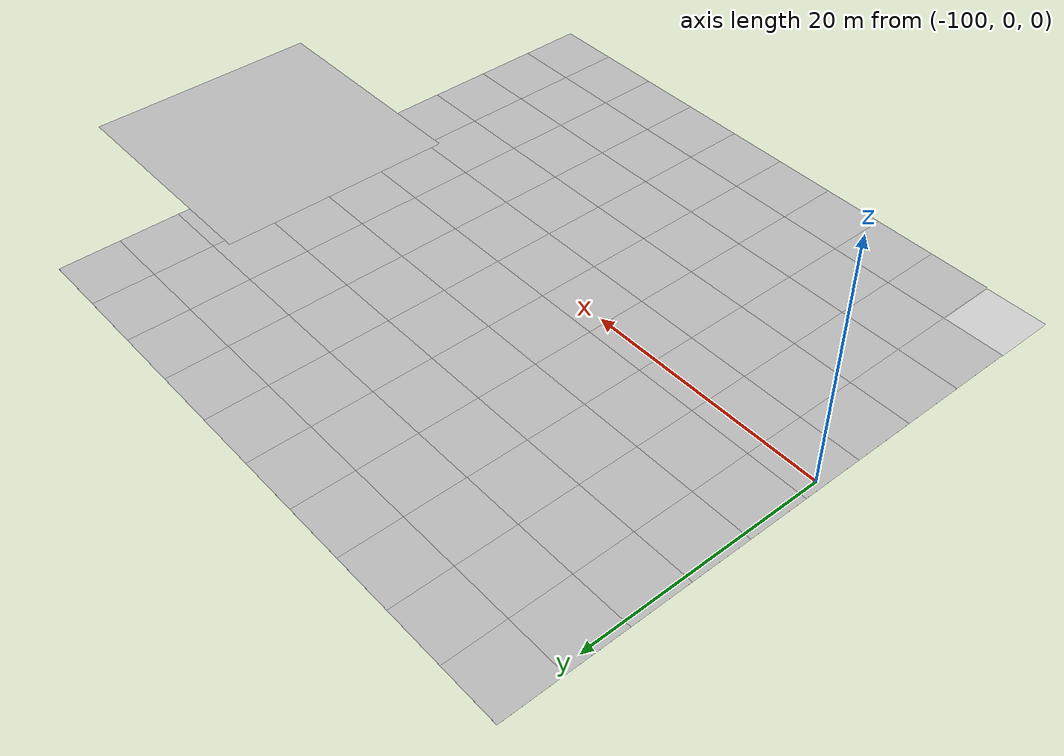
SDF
<sdf version="1.4">
 <world name="default">
  <model name="Road_curve_1">
   <static>1</static>
   <pose>-46.9437 6.31014 0 0 -0 0</pose>
   <link name="link">
    <visual name="visual">
     <pose>0 0 -7.83 0 -0 0</pose>
     <geometry><mesh><uri>model://Road_curve/models/Road 06.dae</uri><scale>0.39 0.39 1</scale></mesh></geometry>
    </visual>
    <velocity_decay><linear>0</linear><angular>0</angular></velocity_decay>
   </link>
  </model>
  <model name="pavement_plane_6">
   <static>1</static>
   <link name="link">
    <collision name="collision">
     <geometry><plane><normal>0 0 1</normal><size>50 50</size></plane></geometry>
     <surface><friction><ode><mu>100</mu><mu2>50</mu2></ode></friction></surface>
    </collision>
    <visual name="visual_0">
     <pose>-25 -25 0 0 -0 0</pose>
     <cast_shadows>0</cast_shadows>
     <geometry><plane><normal>0 0 1</normal><size>5 5</size></plane></geometry>
     <material>
      <script>
       <uri>model://pavement_plane/materials/scripts</uri>
       <uri>model://pavement_plane/materials/textures</uri>
       <name>vrc/pavement</name>
      </script>
     </material>
    </visual>
    <visual name="visual_1">
     <pose>-20 -25 0 0 -0 0</pose>
     <cast_shadows>0</cast_shadows>
     <geometry><plane><normal>0 0 1</normal><size>5 5</size></plane></geometry>
     <material>
      <script>
       <uri>model://pavement_plane/materials/scripts</uri>
       <uri>model://pavement_plane/materials/textures</uri>
       <name>vrc/pavement</name>
      </script>
     </material>
    </visual>
    <visual name="visual_2">
     <pose>-15 -25 0 0 -0 0</pose>
     <cast_shadows>0</cast_shadows>
     <geometry><plane><normal>0 0 1</normal><size>5 5</size></plane></geometry>
     <material>
      <script>
       <uri>model://pavement_plane/materials/scripts</uri>
       <uri>model://pavement_plane/materials/textures</uri>
       <name>vrc/pavement</name>
      </script>
     </material>
    </visual>
    <visual name="visual_3">
     <pose>-10 -25 0 0 -0 0</pose>
     <cast_shadows>0</cast_shadows>
     <geometry><plane><normal>0 0 1</normal><size>5 5</size></plane></geometry>
     <material>
      <script>
       <uri>model://pavement_plane/materials/scripts</uri>
       <uri>model://pavement_plane/materials/textures</uri>
       <name>vrc/pavement</name>
      </script>
     </material>
    </visual>
    <visual name="visual_4">
     <pose>-5 -25 0 0 -0 0</pose>
     <cast_shadows>0</cast_shadows>
     <geometry><plane><normal>0 0 1</normal><size>5 5</size></plane></geometry>
     <material>
      <script>
       <uri>model://pavement_plane/materials/scripts</uri>
       <uri>model://pavement_plane/materials/textures</uri>
       <name>vrc/pavement</name>
      </script>
     </material>
    </visual>
    <visual name="visual_5">
     <pose>0 -25 0 0 -0 0</pose>
     <cast_shadows>0</cast_shadows>
     <geometry><plane><normal>0 0 1</normal><size>5 5</size></plane></geometry>
     <material>
      <script>
       <uri>model://pavement_plane/materials/scripts</uri>
       <uri>model://pavement_plane/materials/textures</uri>
       <name>vrc/pavement</name>
      </script>
     </material>
    </visual>
    <visual name="visual_6">
     <pose>5 -25 0 0 -0 0</pose>
     <cast_shadows>0</cast_shadows>
     <geometry><plane><normal>0 0 1</normal><size>5 5</size></plane></geometry>
     <material>
      <script>
       <uri>model://pavement_plane/materials/scripts</uri>
       <uri>model://pavement_plane/materials/textures</uri>
       <name>vrc/pavement</name>
      </script>
     </material>
    </visual>
    <visual name="visual_7">
     <pose>10 -25 0 0 -0 0</pose>
     <cast_shadows>0</cast_shadows>
     <geometry><plane><normal>0 0 1</normal><size>5 5</size></plane></geometry>
     <material>
      <script>
       <uri>model://pavement_plane/materials/scripts</uri>
       <uri>model://pavement_plane/materials/textures</uri>
       <name>vrc/pavement</name>
      </script>
     </material>
    </visual>
    <visual name="visual_8">
     <pose>15 -25 0 0 -0 0</pose>
     <cast_shadows>0</cast_shadows>
     <geometry><plane><normal>0 0 1</normal><size>5 5</size></plane></geometry>
     <material>
      <script>
       <uri>model://pavement_plane/materials/scripts</uri>
       <uri>model://pavement_plane/materials/textures</uri>
       <name>vrc/pavement</name>
      </script>
     </material>
    </visual>
    <visual name="visual_9">
     <pose>20 -25 0 0 -0 0</pose>
     <cast_shadows>0</cast_shadows>
     <geometry><plane><normal>0 0 1</normal><size>5 5</size></plane></geometry>
     <material>
      <script>
       <uri>model://pavement_plane/materials/scripts</uri>
       <uri>model://pavement_plane/materials/textures</uri>
       <name>vrc/pavement</name>
      </script>
     </material>
    </visual>
    <visual name="visual_10">
     <pose>-25 -20 0 0 -0 0</pose>
     <cast_shadows>0</cast_shadows>
     <geometry><plane><normal>0 0 1</normal><size>5 5</size></plane></geometry>
     <material>
      <script>
       <uri>model://pavement_plane/materials/scripts</uri>
       <uri>model://pavement_plane/materials/textures</uri>
       <name>vrc/pavement</name>
      </script>
     </material>
    </visual>
    <visual name="visual_11">
     <pose>-20 -20 0 0 -0 0</pose>
     <cast_shadows>0</cast_shadows>
     <geometry><plane><normal>0 0 1</normal><size>5 5</size></plane></geometry>
     <material>
      <script>
       <uri>model://pavement_plane/materials/scripts</uri>
       <uri>model://pavement_plane/materials/textures</uri>
       <name>vrc/pavement</name>
      </script>
     </material>
    </visual>
    <visual name="visual_12">
     <pose>-15 -20 0 0 -0 0</pose>
     <cast_shadows>0</cast_shadows>
     <geometry><plane><normal>0 0 1</normal><size>5 5</size></plane></geometry>
     <material>
      <script>
       <uri>model://pavement_plane/materials/scripts</uri>
       <uri>model://pavement_plane/materials/textures</uri>
       <name>vrc/pavement</name>
      </script>
     </material>
    </visual>
    <visual name="visual_13">
     <pose>-10 -20 0 0 -0 0</pose>
     <cast_shadows>0</cast_shadows>
     <geometry><plane><normal>0 0 1</normal><size>5 5</size></plane></geometry>
     <material>
      <script>
       <uri>model://pavement_plane/materials/scripts</uri>
       <uri>model://pavement_plane/materials/textures</uri>
       <name>vrc/pavement</name>
      </script>
     </material>
    </visual>
    <visual name="visual_14">
     <pose>-5 -20 0 0 -0 0</pose>
     <cast_shadows>0</cast_shadows>
     <geometry><plane><normal>0 0 1</normal><size>5 5</size></plane></geometry>
     <material>
      <script>
       <uri>model://pavement_plane/materials/scripts</uri>
       <uri>model://pavement_plane/materials/textures</uri>
       <name>vrc/pavement</name>
      </script>
     </material>
    </visual>
    <visual name="visual_15">
     <pose>0 -20 0 0 -0 0</pose>
     <cast_shadows>0</cast_shadows>
     <geometry><plane><normal>0 0 1</normal><size>5 5</size></plane></geometry>
     <material>
      <script>
       <uri>model://pavement_plane/materials/scripts</uri>
       <uri>model://pavement_plane/materials/textures</uri>
       <name>vrc/pavement</name>
      </script>
     </material>
    </visual>
    <visual name="visual_16">
     <pose>5 -20 0 0 -0 0</pose>
     <cast_shadows>0</cast_shadows>
     <geometry><plane><normal>0 0 1</normal><size>5 5</size></plane></geometry>
     <material>
      <script>
       <uri>model://pavement_plane/materials/scripts</uri>
       <uri>model://pavement_plane/materials/textures</uri>
       <name>vrc/pavement</name>
      </script>
     </material>
    </visual>
    <visual name="visual_17">
     <pose>10 -20 0 0 -0 0</pose>
     <cast_shadows>0</cast_shadows>
     <geometry><plane><normal>0 0 1</normal><size>5 5</size></plane></geometry>
     <material>
      <script>
       <uri>model://pavement_plane/materials/scripts</uri>
       <uri>model://pavement_plane/materials/textures</uri>
       <name>vrc/pavement</name>
      </script>
     </material>
    </visual>
    <visual name="visual_18">
     <pose>15 -20 0 0 -0 0</pose>
     <cast_shadows>0</cast_shadows>
     <geometry><plane><normal>0 0 1</normal><size>5 5</size></plane></geometry>
     <material>
      <script>
       <uri>model://pavement_plane/materials/scripts</uri>
       <uri>model://pavement_plane/materials/textures</uri>
       <name>vrc/pavement</name>
      </script>
     </material>
    </visual>
    <visual name="visual_19">
     <pose>20 -20 0 0 -0 0</pose>
     <cast_shadows>0</cast_shadows>
     <geometry><plane><normal>0 0 1</normal><size>5 5</size></plane></geometry>
     <material>
      <script>
       <uri>model://pavement_plane/materials/scripts</uri>
       <uri>model://pavement_plane/materials/textures</uri>
       <name>vrc/pavement</name>
      </script>
     </material>
    </visual>
    <visual name="visual_20">
     <pose>-25 -15 0 0 -0 0</pose>
     <cast_shadows>0</cast_shadows>
     <geometry><plane><normal>0 0 1</normal><size>5 5</size></plane></geometry>
     <material>
      <script>
       <uri>model://pavement_plane/materials/scripts</uri>
       <uri>model://pavement_plane/materials/textures</uri>
       <name>vrc/pavement</name>
      </script>
     </material>
    </visual>
    <visual name="visual_21">
     <pose>-20 -15 0 0 -0 0</pose>
     <cast_shadows>0</cast_shadows>
     <geometry><plane><normal>0 0 1</normal><size>5 5</size></plane></geometry>
     <material>
      <script>
       <uri>model://pavement_plane/materials/scripts</uri>
       <uri>model://pavement_plane/materials/textures</uri>
       <name>vrc/pavement</name>
      </script>
     </material>
    </visual>
    <visual name="visual_22">
     <pose>-15 -15 0 0 -0 0</pose>
     <cast_shadows>0</cast_shadows>
     <geometry><plane><normal>0 0 1</normal><size>5 5</size></plane></geometry>
     <material>
      <script>
       <uri>model://pavement_plane/materials/scripts</uri>
       <uri>model://pavement_plane/materials/textures</uri>
       <name>vrc/pavement</name>
      </script>
     </material>
    </visual>
    <visual name="visual_23">
     <pose>-10 -15 0 0 -0 0</pose>
     <cast_shadows>0</cast_shadows>
     <geometry><plane><normal>0 0 1</normal><size>5 5</size></plane></geometry>
     <material>
      <script>
       <uri>model://pavement_plane/materials/scripts</uri>
       <uri>model://pavement_plane/materials/textures</uri>
       <name>vrc/pavement</name>
      </script>
     </material>
    </visual>
    <visual name="visual_24">
     <pose>-5 -15 0 0 -0 0</pose>
     <cast_shadows>0</cast_shadows>
     <geometry><plane><normal>0 0 1</normal><size>5 5</size></plane></geometry>
     <material>
      <script>
       <uri>model://pavement_plane/materials/scripts</uri>
       <uri>model://pavement_plane/materials/textures</uri>
       <name>vrc/pavement</name>
      </script>
     </material>
    </visual>
    <visual name="visual_25">
     <pose>0 -15 0 0 -0 0</pose>
     <cast_shadows>0</cast_shadows>
     <geometry><plane><normal>0 0 1</normal><size>5 5</size></plane></geometry>
     <material>
      <script>
       <uri>model://pavement_plane/materials/scripts</uri>
       <uri>model://pavement_plane/materials/textures</uri>
       <name>vrc/pavement</name>
      </script>
     </material>
    </visual>
    <visual name="visual_26">
     <pose>5 -15 0 0 -0 0</pose>
     <cast_shadows>0</cast_shadows>
     <geometry><plane><normal>0 0 1</normal><size>5 5</size></plane></geometry>
     <material>
      <script>
       <uri>model://pavement_plane/materials/scripts</uri>
       <uri>model://pavement_plane/materials/textures</uri>
       <name>vrc/pavement</name>
      </script>
     </material>
    </visual>
    <visual name="visual_27">
     <pose>10 -15 0 0 -0 0</pose>
     <cast_shadows>0</cast_shadows>
     <geometry><plane><normal>0 0 1</normal><size>5 5</size></plane></geometry>
     <material>
      <script>
       <uri>model://pavement_plane/materials/scripts</uri>
       <uri>model://pavement_plane/materials/textures</uri>
       <name>vrc/pavement</name>
      </script>
     </material>
    </visual>
    <visual name="visual_28">
     <pose>15 -15 0 0 -0 0</pose>
     <cast_shadows>0</cast_shadows>
     <geometry><plane><normal>0 0 1</normal><size>5 5</size></plane></geometry>
     <material>
      <script>
       <uri>model://pavement_plane/materials/scripts</uri>
       <uri>model://pavement_plane/materials/textures</uri>
       <name>vrc/pavement</name>
      </script>
     </material>
    </visual>
    <visual name="visual_29">
     <pose>20 -15 0 0 -0 0</pose>
     <cast_shadows>0</cast_shadows>
     <geometry><plane><normal>0 0 1</normal><size>5 5</size></plane></geometry>
     <material>
      <script>
       <uri>model://pavement_plane/materials/scripts</uri>
       <uri>model://pavement_plane/materials/textures</uri>
       <name>vrc/pavement</name>
      </script>
     </material>
    </visual>
    <visual name="visual_30">
     <pose>-25 -10 0 0 -0 0</pose>
     <cast_shadows>0</cast_shadows>
     <geometry><plane><normal>0 0 1</normal><size>5 5</size></plane></geometry>
     <material>
      <script>
       <uri>model://pavement_plane/materials/scripts</uri>
       <uri>model://pavement_plane/materials/textures</uri>
       <name>vrc/pavement</name>
      </script>
     </material>
    </visual>
    <visual name="visual_31">
     <pose>-20 -10 0 0 -0 0</pose>
     <cast_shadows>0</cast_shadows>
     <geometry><plane><normal>0 0 1</normal><size>5 5</size></plane></geometry>
     <material>
      <script>
       <uri>model://pavement_plane/materials/scripts</uri>
       <uri>model://pavement_plane/materials/textures</uri>
       <name>vrc/pavement</name>
      </script>
     </material>
    </visual>
    <visual name="visual_32">
     <pose>-15 -10 0 0 -0 0</pose>
     <cast_shadows>0</cast_shadows>
     <geometry><plane><normal>0 0 1</normal><size>5 5</size></plane></geometry>
     <material>
      <script>
       <uri>model://pavement_plane/materials/scripts</uri>
       <uri>model://pavement_plane/materials/textures</uri>
       <name>vrc/pavement</name>
      </script>
     </material>
    </visual>
    <visual name="visual_33">
     <pose>-10 -10 0 0 -0 0</pose>
     <cast_shadows>0</cast_shadows>
     <geometry><plane><normal>0 0 1</normal><size>5 5</size></plane></geometry>
     <material>
      <script>
       <uri>model://pavement_plane/materials/scripts</uri>
       <uri>model://pavement_plane/materials/textures</uri>
       <name>vrc/pavement</name>
      </script>
     </material>
    </visual>
    <visual name="visual_34">
     <pose>-5 -10 0 0 -0 0</pose>
     <cast_shadows>0</cast_shadows>
     <geometry><plane><normal>0 0 1</normal><size>5 5</size></plane></geometry>
     <material>
      <script>
       <uri>model://pavement_plane/materials/scripts</uri>
       <uri>model://pavement_plane/materials/textures</uri>
       <name>vrc/pavement</name>
      </script>
     </material>
    </visual>
    <visual name="visual_35">
     <pose>0 -10 0 0 -0 0</pose>
     <cast_shadows>0</cast_shadows>
     <geometry><plane><normal>0 0 1</normal><size>5 5</size></plane></geometry>
     <material>
      <script>
       <uri>model://pavement_plane/materials/scripts</uri>
       <uri>model://pavement_plane/materials/textures</uri>
       <name>vrc/pavement</name>
      </script>
     </material>
    </visual>
    <visual name="visual_36">
     <pose>5 -10 0 0 -0 0</pose>
     <cast_shadows>0</cast_shadows>
     <geometry><plane><normal>0 0 1</normal><size>5 5</size></plane></geometry>
     <material>
      <script>
       <uri>model://pavement_plane/materials/scripts</uri>
       <uri>model://pavement_plane/materials/textures</uri>
       <name>vrc/pavement</name>
      </script>
     </material>
    </visual>
    <visual name="visual_37">
     <pose>10 -10 0 0 -0 0</pose>
     <cast_shadows>0</cast_shadows>
     <geometry><plane><normal>0 0 1</normal><size>5 5</size></plane></geometry>
     <material>
      <script>
       <uri>model://pavement_plane/materials/scripts</uri>
       <uri>model://pavement_plane/materials/textures</uri>
       <name>vrc/pavement</name>
      </script>
     </material>
    </visual>
    <visual name="visual_38">
     <pose>15 -10 0 0 -0 0</pose>
     <cast_shadows>0</cast_shadows>
     <geometry><plane><normal>0 0 1</normal><size>5 5</size></plane></geometry>
     <material>
      <script>
       <uri>model://pavement_plane/materials/scripts</uri>
       <uri>model://pavement_plane/materials/textures</uri>
       <name>vrc/pavement</name>
      </script>
     </material>
    </visual>
    <visual name="visual_39">
     <pose>20 -10 0 0 -0 0</pose>
     <cast_shadows>0</cast_shadows>
     <geometry><plane><normal>0 0 1</normal><size>5 5</size></plane></geometry>
     <material>
      <script>
       <uri>model://pavement_plane/materials/scripts</uri>
       <uri>model://pavement_plane/materials/textures</uri>
       <name>vrc/pavement</name>
      </script>
     </material>
    </visual>
    <visual name="visual_40">
     <pose>-25 -5 0 0 -0 0</pose>
     <cast_shadows>0</cast_shadows>
     <geometry><plane><normal>0 0 1</normal><size>5 5</size></plane></geometry>
     <material>
      <script>
       <uri>model://pavement_plane/materials/scripts</uri>
       <uri>model://pavement_plane/materials/textures</uri>
       <name>vrc/pavement</name>
      </script>
     </material>
    </visual>
    <visual name="visual_41">
     <pose>-20 -5 0 0 -0 0</pose>
     <cast_shadows>0</cast_shadows>
     <geometry><plane><normal>0 0 1</normal><size>5 5</size></plane></geometry>
     <material>
      <script>
       <uri>model://pavement_plane/materials/scripts</uri>
       <uri>model://pavement_plane/materials/textures</uri>
       <name>vrc/pavement</name>
      </script>
     </material>
    </visual>
    <visual name="visual_42">
     <pose>-15 -5 0 0 -0 0</pose>
     <cast_shadows>0</cast_shadows>
     <geometry><plane><normal>0 0 1</normal><size>5 5</size></plane></geometry>
     <material>
      <script>
       <uri>model://pavement_plane/materials/scripts</uri>
       <uri>model://pavement_plane/materials/textures</uri>
       <name>vrc/pavement</name>
      </script>
     </material>
    </visual>
    <visual name="visual_43">
     <pose>-10 -5 0 0 -0 0</pose>
     <cast_shadows>0</cast_shadows>
     <geometry><plane><normal>0 0 1</normal><size>5 5</size></plane></geometry>
     <material>
      <script>
       <uri>model://pavement_plane/materials/scripts</uri>
       <uri>model://pavement_plane/materials/textures</uri>
       <name>vrc/pavement</name>
      </script>
     </material>
    </visual>
    <visual name="visual_44">
     <pose>-5 -5 0 0 -0 0</pose>
     <cast_shadows>0</cast_shadows>
     <geometry><plane><normal>0 0 1</normal><size>5 5</size></plane></geometry>
     <material>
      <script>
       <uri>model://pavement_plane/materials/scripts</uri>
       <uri>model://pavement_plane/materials/textures</uri>
       <name>vrc/pavement</name>
      </script>
     </material>
    </visual>
    <visual name="visual_45">
     <pose>0 -5 0 0 -0 0</pose>
     <cast_shadows>0</cast_shadows>
     <geometry><plane><normal>0 0 1</normal><size>5 5</size></plane></geometry>
     <material>
      <script>
       <uri>model://pavement_plane/materials/scripts</uri>
       <uri>model://pavement_plane/materials/textures</uri>
       <name>vrc/pavement</name>
      </script>
     </material>
    </visual>
    <visual name="visual_46">
     <pose>5 -5 0 0 -0 0</pose>
     <cast_shadows>0</cast_shadows>
     <geometry><plane><normal>0 0 1</normal><size>5 5</size></plane></geometry>
     <material>
      <script>
       <uri>model://pavement_plane/materials/scripts</uri>
       <uri>model://pavement_plane/materials/textures</uri>
       <name>vrc/pavement</name>
      </script>
     </material>
    </visual>
    <visual name="visual_47">
     <pose>10 -5 0 0 -0 0</pose>
     <cast_shadows>0</cast_shadows>
     <geometry><plane><normal>0 0 1</normal><size>5 5</size></plane></geometry>
     <material>
      <script>
       <uri>model://pavement_plane/materials/scripts</uri>
       <uri>model://pavement_plane/materials/textures</uri>
       <name>vrc/pavement</name>
      </script>
     </material>
    </visual>
    <visual name="visual_48">
     <pose>15 -5 0 0 -0 0</pose>
     <cast_shadows>0</cast_shadows>
     <geometry><plane><normal>0 0 1</normal><size>5 5</size></plane></geometry>
     <material>
      <script>
       <uri>model://pavement_plane/materials/scripts</uri>
       <uri>model://pavement_plane/materials/textures</uri>
       <name>vrc/pavement</name>
      </script>
     </material>
    </visual>
    <visual name="visual_49">
     <pose>20 -5 0 0 -0 0</pose>
     <cast_shadows>0</cast_shadows>
     <geometry><plane><normal>0 0 1</normal><size>5 5</size></plane></geometry>
     <material>
      <script>
       <uri>model://pavement_plane/materials/scripts</uri>
       <uri>model://pavement_plane/materials/textures</uri>
       <name>vrc/pavement</name>
      </script>
     </material>
    </visual>
    <visual name="visual_50">
     <pose>-25 0 0 0 -0 0</pose>
     <cast_shadows>0</cast_shadows>
     <geometry><plane><normal>0 0 1</normal><size>5 5</size></plane></geometry>
     <material>
      <script>
       <uri>model://pavement_plane/materials/scripts</uri>
       <uri>model://pavement_plane/materials/textures</uri>
       <name>vrc/pavement</name>
      </script>
     </material>
    </visual>
    <visual name="visual_51">
     <pose>-20 0 0 0 -0 0</pose>
     <cast_shadows>0</cast_shadows>
     <geometry><plane><normal>0 0 1</normal><size>5 5</size></plane></geometry>
     <material>
      <script>
       <uri>model://pavement_plane/materials/scripts</uri>
       <uri>model://pavement_plane/materials/textures</uri>
       <name>vrc/pavement</name>
      </script>
     </material>
    </visual>
    <visual name="visual_52">
     <pose>-15 0 0 0 -0 0</pose>
     <cast_shadows>0</cast_shadows>
     <geometry><plane><normal>0 0 1</normal><size>5 5</size></plane></geometry>
     <material>
      <script>
       <uri>model://pavement_plane/materials/scripts</uri>
       <uri>model://pavement_plane/materials/textures</uri>
       <name>vrc/pavement</name>
      </script>
     </material>
    </visual>
    <visual name="visual_53">
     <pose>-10 0 0 0 -0 0</pose>
     <cast_shadows>0</cast_shadows>
     <geometry><plane><normal>0 0 1</normal><size>5 5</size></plane></geometry>
     <material>
      <script>
       <uri>model://pavement_plane/materials/scripts</uri>
       <uri>model://pavement_plane/materials/textures</uri>
       <name>vrc/pavement</name>
      </script>
     </material>
    </visual>
    <visual name="visual_54">
     <pose>-5 0 0 0 -0 0</pose>
     <cast_shadows>0</cast_shadows>
     <geometry><plane><normal>0 0 1</normal><size>5 5</size></plane></geometry>
     <material>
      <script>
       <uri>model://pavement_plane/materials/scripts</uri>
       <uri>model://pavement_plane/materials/textures</uri>
       <name>vrc/pavement</name>
      </script>
     </material>
    </visual>
    <visual name="visual_55">
     <cast_shadows>0</cast_shadows>
     <geometry><plane><normal>0 0 1</normal><size>5 5</size></plane></geometry>
     <material>
      <script>
       <uri>model://pavement_plane/materials/scripts</uri>
       <uri>model://pavement_plane/materials/textures</uri>
       <name>vrc/pavement</name>
      </script>
     </material>
    </visual>
    <visual name="visual_56">
     <pose>5 0 0 0 -0 0</pose>
     <cast_shadows>0</cast_shadows>
     <geometry><plane><normal>0 0 1</normal><size>5 5</size></plane></geometry>
     <material>
      <script>
       <uri>model://pavement_plane/materials/scripts</uri>
       <uri>model://pavement_plane/materials/textures</uri>
       <name>vrc/pavement</name>
      </script>
     </material>
    </visual>
    <visual name="visual_57">
     <pose>10 0 0 0 -0 0</pose>
     <cast_shadows>0</cast_shadows>
     <geometry><plane><normal>0 0 1</normal><size>5 5</size></plane></geometry>
     <material>
      <script>
       <uri>model://pavement_plane/materials/scripts</uri>
       <uri>model://pavement_plane/materials/textures</uri>
       <name>vrc/pavement</name>
      </script>
     </material>
    </visual>
    <visual name="visual_58">
     <pose>15 0 0 0 -0 0</pose>
     <cast_shadows>0</cast_shadows>
     <geometry><plane><normal>0 0 1</normal><size>5 5</size></plane></geometry>
     <material>
      <script>
       <uri>model://pavement_plane/materials/scripts</uri>
       <uri>model://pavement_plane/materials/textures</uri>
       <name>vrc/pavement</name>
      </script>
     </material>
    </visual>
    <visual name="visual_59">
     <pose>20 0 0 0 -0 0</pose>
     <cast_shadows>0</cast_shadows>
     <geometry><plane><normal>0 0 1</normal><size>5 5</size></plane></geometry>
     <material>
      <script>
       <uri>model://pavement_plane/materials/scripts</uri>
       <uri>model://pavement_plane/materials/textures</uri>
       <name>vrc/pavement</name>
      </script>
     </material>
    </visual>
    <visual name="visual_60">
     <pose>-25 5 0 0 -0 0</pose>
     <cast_shadows>0</cast_shadows>
     <geometry><plane><normal>0 0 1</normal><size>5 5</size></plane></geometry>
     <material>
      <script>
       <uri>model://pavement_plane/materials/scripts</uri>
       <uri>model://pavement_plane/materials/textures</uri>
       <name>vrc/pavement</name>
      </script>
     </material>
    </visual>
    <visual name="visual_61">
     <pose>-20 5 0 0 -0 0</pose>
     <cast_shadows>0</cast_shadows>
     <geometry><plane><normal>0 0 1</normal><size>5 5</size></plane></geometry>
     <material>
      <script>
       <uri>model://pavement_plane/materials/scripts</uri>
       <uri>model://pavement_plane/materials/textures</uri>
       <name>vrc/pavement</name>
      </script>
     </material>
    </visual>
    <visual name="visual_62">
     <pose>-15 5 0 0 -0 0</pose>
     <cast_shadows>0</cast_shadows>
     <geometry><plane><normal>0 0 1</normal><size>5 5</size></plane></geometry>
     <material>
      <script>
       <uri>model://pavement_plane/materials/scripts</uri>
       <uri>model://pavement_plane/materials/textures</uri>
       <name>vrc/pavement</name>
      </script>
     </material>
    </visual>
    <visual name="visual_63">
     <pose>-10 5 0 0 -0 0</pose>
     <cast_shadows>0</cast_shadows>
     <geometry><plane><normal>0 0 1</normal><size>5 5</size></plane></geometry>
     <material>
      <script>
       <uri>model://pavement_plane/materials/scripts</uri>
       <uri>model://pavement_plane/materials/textures</uri>
       <name>vrc/pavement</name>
      </script>
     </material>
    </visual>
    <visual name="visual_64">
     <pose>-5 5 0 0 -0 0</pose>
     <cast_shadows>0</cast_shadows>
     <geometry><plane><normal>0 0 1</normal><size>5 5</size></plane></geometry>
     <material>
      <script>
       <uri>model://pavement_plane/materials/scripts</uri>
       <uri>model://pavement_plane/materials/textures</uri>
       <name>vrc/pavement</name>
      </script>
     </material>
    </visual>
    <visual name="visual_65">
     <pose>0 5 0 0 -0 0</pose>
     <cast_shadows>0</cast_shadows>
     <geometry><plane><normal>0 0 1</normal><size>5 5</size></plane></geometry>
     <material>
      <script>
       <uri>model://pavement_plane/materials/scripts</uri>
       <uri>model://pavement_plane/materials/textures</uri>
       <name>vrc/pavement</name>
      </script>
     </material>
    </visual>
    <visual name="visual_66">
     <pose>5 5 0 0 -0 0</pose>
     <cast_shadows>0</cast_shadows>
     <geometry><plane><normal>0 0 1</normal><size>5 5</size></plane></geometry>
     <material>
      <script>
       <uri>model://pavement_plane/materials/scripts</uri>
       <uri>model://pavement_plane/materials/textures</uri>
       <name>vrc/pavement</name>
      </script>
     </material>
    </visual>
    <visual name="visual_67">
     <pose>10 5 0 0 -0 0</pose>
     <cast_shadows>0</cast_shadows>
     <geometry><plane><normal>0 0 1</normal><size>5 5</size></plane></geometry>
     <material>
      <script>
       <uri>model://pavement_plane/materials/scripts</uri>
       <uri>model://pavement_plane/materials/textures</uri>
       <name>vrc/pavement</name>
      </script>
     </material>
    </visual>
    <visual name="visual_68">
     <pose>15 5 0 0 -0 0</pose>
     <cast_shadows>0</cast_shadows>
     <geometry><plane><normal>0 0 1</normal><size>5 5</size></plane></geometry>
     <material>
      <script>
       <uri>model://pavement_plane/materials/scripts</uri>
       <uri>model://pavement_plane/materials/textures</uri>
       <name>vrc/pavement</name>
      </script>
     </material>
    </visual>
    <visual name="visual_69">
     <pose>20 5 0 0 -0 0</pose>
     <cast_shadows>0</cast_shadows>
     <geometry><plane><normal>0 0 1</normal><size>5 5</size></plane></geometry>
     <material>
      <script>
       <uri>model://pavement_plane/materials/scripts</uri>
       <uri>model://pavement_plane/materials/textures</uri>
       <name>vrc/pavement</name>
      </script>
     </material>
    </visual>
    <visual name="visual_70">
     <pose>-25 10 0 0 -0 0</pose>
     <cast_shadows>0</cast_shadows>
     <geometry><plane><normal>0 0 1</normal><size>5 5</size></plane></geometry>
     <material>
      <script>
       <uri>model://pavement_plane/materials/scripts</uri>
       <uri>model://pavement_plane/materials/textures</uri>
       <name>vrc/pavement</name>
      </script>
     </material>
    </visual>
    <visual name="visual_71">
     <pose>-20 10 0 0 -0 0</pose>
     <cast_shadows>0</cast_shadows>
     <geometry><plane><normal>0 0 1</normal><size>5 5</size></plane></geometry>
     <material>
      <script>
       <uri>model://pavement_plane/materials/scripts</uri>
       <uri>model://pavement_plane/materials/textures</uri>
       <name>vrc/pavement</name>
      </script>
     </material>
    </visual>
    <visual name="visual_72">
     <pose>-15 10 0 0 -0 0</pose>
     <cast_shadows>0</cast_shadows>
     <geometry><plane><normal>0 0 1</normal><size>5 5</size></plane></geometry>
     <material>
      <script>
       <uri>model://pavement_plane/materials/scripts</uri>
       <uri>model://pavement_plane/materials/textures</uri>
       <name>vrc/pavement</name>
      </script>
     </material>
    </visual>
    <visual name="visual_73">
     <pose>-10 10 0 0 -0 0</pose>
     <cast_shadows>0</cast_shadows>
     <geometry><plane><normal>0 0 1</normal><size>5 5</size></plane></geometry>
     <material>
      <script>
       <uri>model://pavement_plane/materials/scripts</uri>
       <uri>model://pavement_plane/materials/textures</uri>
       <name>vrc/pavement</name>
      </script>
     </material>
    </visual>
    <visual name="visual_74">
     <pose>-5 10 0 0 -0 0</pose>
     <cast_shadows>0</cast_shadows>
     <geometry><plane><normal>0 0 1</normal><size>5 5</size></plane></geometry>
     <material>
      <script>
       <uri>model://pavement_plane/materials/scripts</uri>
       <uri>model://pavement_plane/materials/textures</uri>
       <name>vrc/pavement</name>
      </script>
     </material>
    </visual>
    <visual name="visual_75">
     <pose>0 10 0 0 -0 0</pose>
     <cast_shadows>0</cast_shadows>
     <geometry><plane><normal>0 0 1</normal><size>5 5</size></plane></geometry>
     <material>
      <script>
       <uri>model://pavement_plane/materials/scripts</uri>
       <uri>model://pavement_plane/materials/textures</uri>
       <name>vrc/pavement</name>
      </script>
     </material>
    </visual>
    <visual name="visual_76">
     <pose>5 10 0 0 -0 0</pose>
     <cast_shadows>0</cast_shadows>
     <geometry><plane><normal>0 0 1</normal><size>5 5</size></plane></geometry>
     <material>
      <script>
       <uri>model://pavement_plane/materials/scripts</uri>
       <uri>model://pavement_plane/materials/textures</uri>
       <name>vrc/pavement</name>
      </script>
     </material>
    </visual>
    <visual name="visual_77">
     <pose>10 10 0 0 -0 0</pose>
     <cast_shadows>0</cast_shadows>
     <geometry><plane><normal>0 0 1</normal><size>5 5</size></plane></geometry>
     <material>
      <script>
       <uri>model://pavement_plane/materials/scripts</uri>
       <uri>model://pavement_plane/materials/textures</uri>
       <name>vrc/pavement</name>
      </script>
     </material>
    </visual>
    <visual name="visual_78">
     <pose>15 10 0 0 -0 0</pose>
     <cast_shadows>0</cast_shadows>
     <geometry><plane><normal>0 0 1</normal><size>5 5</size></plane></geometry>
     <material>
      <script>
       <uri>model://pavement_plane/materials/scripts</uri>
       <uri>model://pavement_plane/materials/textures</uri>
       <name>vrc/pavement</name>
      </script>
     </material>
    </visual>
    <visual name="visual_79">
     <pose>20 10 0 0 -0 0</pose>
     <cast_shadows>0</cast_shadows>
     <geometry><plane><normal>0 0 1</normal><size>5 5</size></plane></geometry>
     <material>
      <script>
       <uri>model://pavement_plane/materials/scripts</uri>
       <uri>model://pavement_plane/materials/textures</uri>
       <name>vrc/pavement</name>
      </script>
     </material>
    </visual>
    <visual name="visual_80">
     <pose>-25 15 0 0 -0 0</pose>
     <cast_shadows>0</cast_shadows>
     <geometry><plane><normal>0 0 1</normal><size>5 5</size></plane></geometry>
     <material>
      <script>
       <uri>model://pavement_plane/materials/scripts</uri>
       <uri>model://pavement_plane/materials/textures</uri>
       <name>vrc/pavement</name>
      </script>
     </material>
    </visual>
    <visual name="visual_81">
     <pose>-20 15 0 0 -0 0</pose>
     <cast_shadows>0</cast_shadows>
     <geometry><plane><normal>0 0 1</normal><size>5 5</size></plane></geometry>
     <material>
      <script>
       <uri>model://pavement_plane/materials/scripts</uri>
       <uri>model://pavement_plane/materials/textures</uri>
       <name>vrc/pavement</name>
      </script>
     </material>
    </visual>
    <visual name="visual_82">
     <pose>-15 15 0 0 -0 0</pose>
     <cast_shadows>0</cast_shadows>
     <geometry><plane><normal>0 0 1</normal><size>5 5</size></plane></geometry>
     <material>
      <script>
       <uri>model://pavement_plane/materials/scripts</uri>
       <uri>model://pavement_plane/materials/textures</uri>
       <name>vrc/pavement</name>
      </script>
     </material>
    </visual>
    <visual name="visual_83">
     <pose>-10 15 0 0 -0 0</pose>
     <cast_shadows>0</cast_shadows>
     <geometry><plane><normal>0 0 1</normal><size>5 5</size></plane></geometry>
     <material>
      <script>
       <uri>model://pavement_plane/materials/scripts</uri>
       <uri>model://pavement_plane/materials/textures</uri>
       <name>vrc/pavement</name>
      </script>
     </material>
    </visual>
    <visual name="visual_84">
     <pose>-5 15 0 0 -0 0</pose>
     <cast_shadows>0</cast_shadows>
     <geometry><plane><normal>0 0 1</normal><size>5 5</size></plane></geometry>
     <material>
      <script>
       <uri>model://pavement_plane/materials/scripts</uri>
       <uri>model://pavement_plane/materials/textures</uri>
       <name>vrc/pavement</name>
      </script>
     </material>
    </visual>
    <visual name="visual_85">
     <pose>0 15 0 0 -0 0</pose>
     <cast_shadows>0</cast_shadows>
     <geometry><plane><normal>0 0 1</normal><size>5 5</size></plane></geometry>
     <material>
      <script>
       <uri>model://pavement_plane/materials/scripts</uri>
       <uri>model://pavement_plane/materials/textures</uri>
       <name>vrc/pavement</name>
      </script>
     </material>
    </visual>
    <visual name="visual_86">
     <pose>5 15 0 0 -0 0</pose>
     <cast_shadows>0</cast_shadows>
     <geometry><plane><normal>0 0 1</normal><size>5 5</size></plane></geometry>
     <material>
      <script>
       <uri>model://pavement_plane/materials/scripts</uri>
       <uri>model://pavement_plane/materials/textures</uri>
       <name>vrc/pavement</name>
      </script>
     </material>
    </visual>
    <visual name="visual_87">
     <pose>10 15 0 0 -0 0</pose>
     <cast_shadows>0</cast_shadows>
     <geometry><plane><normal>0 0 1</normal><size>5 5</size></plane></geometry>
     <material>
      <script>
       <uri>model://pavement_plane/materials/scripts</uri>
       <uri>model://pavement_plane/materials/textures</uri>
       <name>vrc/pavement</name>
      </script>
     </material>
    </visual>
    <visual name="visual_88">
     <pose>15 15 0 0 -0 0</pose>
     <cast_shadows>0</cast_shadows>
     <geometry><plane><normal>0 0 1</normal><size>5 5</size></plane></geometry>
     <material>
      <script>
       <uri>model://pavement_plane/materials/scripts</uri>
       <uri>model://pavement_plane/materials/textures</uri>
       <name>vrc/pavement</name>
      </script>
     </material>
    </visual>
    <visual name="visual_89">
     <pose>20 15 0 0 -0 0</pose>
     <cast_shadows>0</cast_shadows>
     <geometry><plane><normal>0 0 1</normal><size>5 5</size></plane></geometry>
     <material>
      <script>
       <uri>model://pavement_plane/materials/scripts</uri>
       <uri>model://pavement_plane/materials/textures</uri>
       <name>vrc/pavement</name>
      </script>
     </material>
    </visual>
    <visual name="visual_90">
     <pose>-25 20 0 0 -0 0</pose>
     <cast_shadows>0</cast_shadows>
     <geometry><plane><normal>0 0 1</normal><size>5 5</size></plane></geometry>
     <material>
      <script>
       <uri>model://pavement_plane/materials/scripts</uri>
       <uri>model://pavement_plane/materials/textures</uri>
       <name>vrc/pavement</name>
      </script>
     </material>
    </visual>
    <visual name="visual_91">
     <pose>-20 20 0 0 -0 0</pose>
     <cast_shadows>0</cast_shadows>
     <geometry><plane><normal>0 0 1</normal><size>5 5</size></plane></geometry>
     <material>
      <script>
       <uri>model://pavement_plane/materials/scripts</uri>
       <uri>model://pavement_plane/materials/textures</uri>
       <name>vrc/pavement</name>
      </script>
     </material>
    </visual>
    <visual name="visual_92">
     <pose>-15 20 0 0 -0 0</pose>
     <cast_shadows>0</cast_shadows>
     <geometry><plane><normal>0 0 1</normal><size>5 5</size></plane></geometry>
     <material>
      <script>
       <uri>model://pavement_plane/materials/scripts</uri>
       <uri>model://pavement_plane/materials/textures</uri>
       <name>vrc/pavement</name>
      </script>
     </material>
    </visual>
    <visual name="visual_93">
     <pose>-10 20 0 0 -0 0</pose>
     <cast_shadows>0</cast_shadows>
     <geometry><plane><normal>0 0 1</normal><size>5 5</size></plane></geometry>
     <material>
      <script>
       <uri>model://pavement_plane/materials/scripts</uri>
       <uri>model://pavement_plane/materials/textures</uri>
       <name>vrc/pavement</name>
      </script>
     </material>
    </visual>
    <visual name="visual_94">
     <pose>-5 20 0 0 -0 0</pose>
     <cast_shadows>0</cast_shadows>
     <geometry><plane><normal>0 0 1</normal><size>5 5</size></plane></geometry>
     <material>
      <script>
       <uri>model://pavement_plane/materials/scripts</uri>
       <uri>model://pavement_plane/materials/textures</uri>
       <name>vrc/pavement</name>
      </script>
     </material>
    </visual>
    <visual name="visual_95">
     <pose>0 20 0 0 -0 0</pose>
     <cast_shadows>0</cast_shadows>
     <geometry><plane><normal>0 0 1</normal><size>5 5</size></plane></geometry>
     <material>
      <script>
       <uri>model://pavement_plane/materials/scripts</uri>
       <uri>model://pavement_plane/materials/textures</uri>
       <name>vrc/pavement</name>
      </script>
     </material>
    </visual>
    <visual name="visual_96">
     <pose>5 20 0 0 -0 0</pose>
     <cast_shadows>0</cast_shadows>
     <geometry><plane><normal>0 0 1</normal><size>5 5</size></plane></geometry>
     <material>
      <script>
       <uri>model://pavement_plane/materials/scripts</uri>
       <uri>model://pavement_plane/materials/textures</uri>
       <name>vrc/pavement</name>
      </script>
     </material>
    </visual>
    <visual name="visual_97">
     <pose>10 20 0 0 -0 0</pose>
     <cast_shadows>0</cast_shadows>
     <geometry><plane><normal>0 0 1</normal><size>5 5</size></plane></geometry>
     <material>
      <script>
       <uri>model://pavement_plane/materials/scripts</uri>
       <uri>model://pavement_plane/materials/textures</uri>
       <name>vrc/pavement</name>
      </script>
     </material>
    </visual>
    <visual name="visual_98">
     <pose>15 20 0 0 -0 0</pose>
     <cast_shadows>0</cast_shadows>
     <geometry><plane><normal>0 0 1</normal><size>5 5</size></plane></geometry>
     <material>
      <script>
       <uri>model://pavement_plane/materials/scripts</uri>
       <uri>model://pavement_plane/materials/textures</uri>
       <name>vrc/pavement</name>
      </script>
     </material>
    </visual>
    <visual name="visual_99">
     <pose>20 20 0 0 -0 0</pose>
     <cast_shadows>0</cast_shadows>
     <geometry><plane><normal>0 0 1</normal><size>5 5</size></plane></geometry>
     <material>
      <script>
       <uri>model://pavement_plane/materials/scripts</uri>
       <uri>model://pavement_plane/materials/textures</uri>
       <name>vrc/pavement</name>
      </script>
     </material>
    </visual>
    <velocity_decay><linear>0</linear><angular>0</angular></velocity_decay>
   </link>
   <pose>-73 4 0 0 -0 0</pose>
  </model>
 </world>
</sdf>
